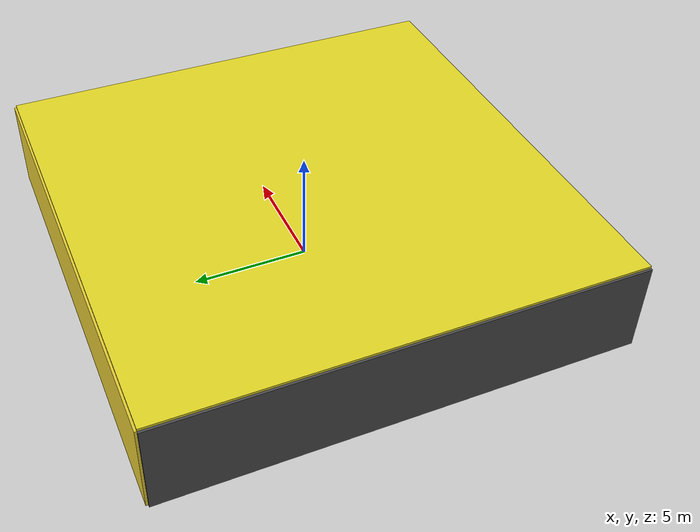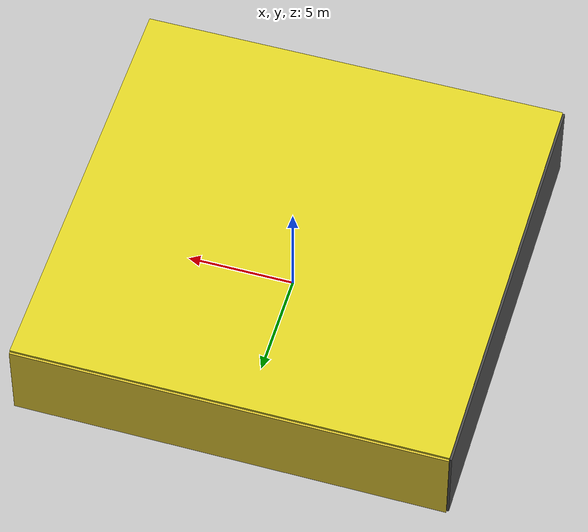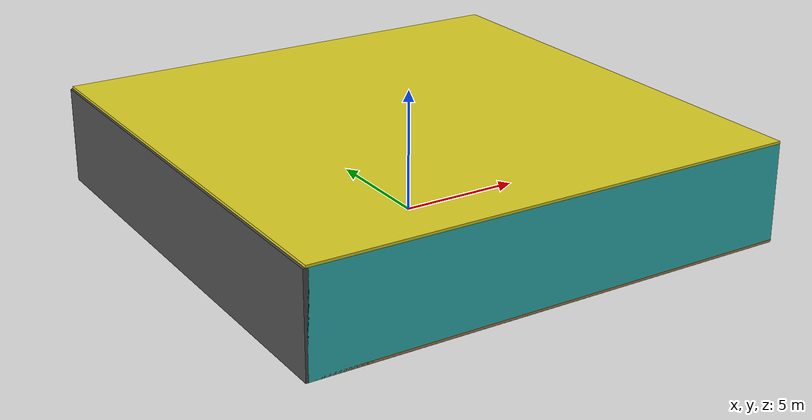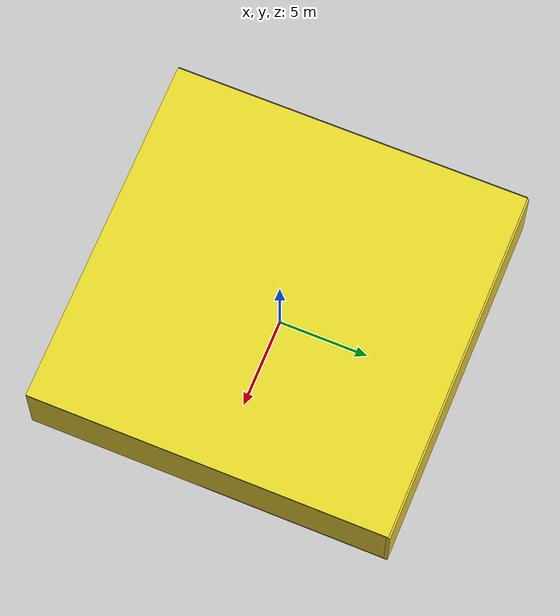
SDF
<sdf version="1.4">
 <world name="default">
  <physics type="ode">
   <max_step_size>0.001</max_step_size>
   <real_time_factor>1</real_time_factor>
   <real_time_update_rate>1000</real_time_update_rate>
   <gravity>0 0 -9.8</gravity>
  </physics>
  <scene><ambient>0.4 0.4 0.4 1</ambient><background>0.7 0.7 0.7 1</background><shadows>1</shadows></scene>
  <model name="Surrounding">
   <static>1</static>
   <link name="Ceiling">
    <collision name="Ceiling_Collision"><geometry><box><size>20 20 0.1</size></box></geometry></collision>
    <visual name="Ceiling_Visual">
     <geometry><box><size>20 20 0.1</size></box></geometry>
     <material>
      <script><uri>file://media/materials/scripts/gazebo.material</uri><name>Gazebo/Yellow</name></script>
     </material>
    </visual>
    <pose>0 0 4.05 0 0 0</pose>
   </link>
   <link name="Wall_South">
    <collision name="Wall_South_Collision">
     <geometry><box><size>20 0 4</size></box></geometry>
     <pose>0 0 2 0 -0 0</pose>
    </collision>
    <visual name="Wall_South_Visual">
     <pose>0 0 2 0 -0 0</pose>
     <geometry><box><size>20 0 4</size></box></geometry>
     <material>
      <script><uri>file://media/materials/scripts/gazebo.material</uri><name>Gazebo/Turquoise</name></script>
     </material>
    </visual>
    <velocity_decay><linear>0</linear><angular>0</angular></velocity_decay>
    <pose>0 -10 0 0 -0 0</pose>
   </link>
   <link name="Wall_East">
    <collision name="Wall_21_Collision">
     <geometry><box><size>20 0 4</size></box></geometry>
     <pose>0 0 2 0 -0 0</pose>
    </collision>
    <visual name="Wall_21_Visual">
     <pose>0 0 2 0 -0 0</pose>
     <geometry><box><size>20 0 4</size></box></geometry>
     <material>
      <script><uri>file://media/materials/scripts/gazebo.material</uri><name>Gazebo/ZincYellow</name></script>
     </material>
    </visual>
    <velocity_decay><linear>0</linear><angular>0</angular></velocity_decay>
    <pose>10 0 0 0 -0 1.5708</pose>
   </link>
   <link name="Wall_North">
    <collision name="Wall_22_Collision">
     <geometry><box><size>20 0.2 4</size></box></geometry>
     <pose>0 0 2 0 -0 0</pose>
    </collision>
    <visual name="Wall_22_Visual">
     <pose>0 0 2 0 -0 0</pose>
     <geometry><box><size>20 0.2 4</size></box></geometry>
     <material>
      <script><uri>file://media/materials/scripts/gazebo.material</uri><name>Gazebo/ZincYellow</name></script>
     </material>
    </visual>
    <velocity_decay><linear>0</linear><angular>0</angular></velocity_decay>
    <pose>0 10 0 0 -0 0</pose>
   </link>
   <link name="Wall_West">
    <collision name="Wall_23_Collision">
     <geometry><box><size>20 0.2 4</size></box></geometry>
     <pose>0 0 2 0 -0 0</pose>
    </collision>
    <visual name="Wall_23_Visual">
     <pose>0 0 2 0 -0 0</pose>
     <geometry><box><size>20 0.2 4</size></box></geometry>
     <material>
      <script><uri>file://media/materials/scripts/gazebo.material</uri><name>Gazebo/Road</name></script>
     </material>
    </visual>
    <velocity_decay><linear>0</linear><angular>0</angular></velocity_decay>
    <pose>-10 0 0 0 0 -1.5708</pose>
   </link>
   <link name="Ground_link">
    <collision name="collision">
     <pose>0 0 .05 0 -0 0</pose>
     <geometry><box><size>20 20 0.1</size></box></geometry>
    </collision>
    <visual name="visual">
     <pose>0 0 .05 0 -0 0</pose>
     <geometry><box><size>20 20 0.1</size></box></geometry>
     <material>
      <script><uri>file://media/materials/scripts/gazebo.material</uri><name>Gazebo/Wood</name></script>
     </material>
    </visual>
   </link>
   <static>1</static>
  </model>
  <spherical_coordinates>
   <surface_model>EARTH_WGS84</surface_model>
   <latitude_deg>0</latitude_deg>
   <longitude_deg>0</longitude_deg>
   <elevation>0</elevation>
   <heading_deg>0</heading_deg>
  </spherical_coordinates>
  <light name="lightball_0" type="diffuse">
   <diffuse>0.8 0.8 0.8 1</diffuse>
   <specular>0.2 0.2 0.2 1</specular>
   <attenuation>
    <range>100</range>
    <constant>0.7</constant>
    <linear>0.01</linear>
    <quadratic>0.001</quadratic>
   </attenuation>
   <direction>-0.5 0.1 -0.9</direction>
   <pose>3.40804404702 5.21973616305 2.12281445874 0 0 0</pose>
  </light>
  <light name="lightball_1" type="diffuse">
   <diffuse>0.8 0.8 0.8 1</diffuse>
   <specular>0.2 0.2 0.2 1</specular>
   <attenuation>
    <range>100</range>
    <constant>0.7</constant>
    <linear>0.01</linear>
    <quadratic>0.001</quadratic>
   </attenuation>
   <direction>-0.5 0.1 -0.9</direction>
   <pose>-2.99416624712 3.96158616661 3.64758307754 0 0 0</pose>
  </light>
  <light name="lightball_2" type="diffuse">
   <diffuse>0.8 0.8 0.8 1</diffuse>
   <specular>0.2 0.2 0.2 1</specular>
   <attenuation>
    <range>100</range>
    <constant>0.7</constant>
    <linear>0.01</linear>
    <quadratic>0.001</quadratic>
   </attenuation>
   <direction>-0.5 0.1 -0.9</direction>
   <pose>9.36749759892 -1.17246700027 1.63453146422 0 0 0</pose>
  </light>
  <light name="lightball_3" type="diffuse">
   <diffuse>0.8 0.8 0.8 1</diffuse>
   <specular>0.2 0.2 0.2 1</specular>
   <attenuation>
    <range>100</range>
    <constant>0.7</constant>
    <linear>0.01</linear>
    <quadratic>0.001</quadratic>
   </attenuation>
   <direction>-0.5 0.1 -0.9</direction>
   <pose>0.482527139271 -8.25620097717 2.82701597541 0 0 0</pose>
  </light>
  <light name="lightball_4" type="diffuse">
   <diffuse>0.8 0.8 0.8 1</diffuse>
   <specular>0.2 0.2 0.2 1</specular>
   <attenuation>
    <range>100</range>
    <constant>0.7</constant>
    <linear>0.01</linear>
    <quadratic>0.001</quadratic>
   </attenuation>
   <direction>-0.5 0.1 -0.9</direction>
   <pose>-4.51630960177 -0.131296089183 1.87561354107 0 0 0</pose>
  </light>
  <light name="lightball_5" type="diffuse">
   <diffuse>0.8 0.8 0.8 1</diffuse>
   <specular>0.2 0.2 0.2 1</specular>
   <attenuation>
    <range>100</range>
    <constant>0.7</constant>
    <linear>0.01</linear>
    <quadratic>0.001</quadratic>
   </attenuation>
   <direction>-0.5 0.1 -0.9</direction>
   <pose>-7.94053627582 -9.6143364803 1.89098058948 0 0 0</pose>
  </light>
  <light name="lightball_6" type="diffuse">
   <diffuse>0.8 0.8 0.8 1</diffuse>
   <specular>0.2 0.2 0.2 1</specular>
   <attenuation>
    <range>100</range>
    <constant>0.7</constant>
    <linear>0.01</linear>
    <quadratic>0.001</quadratic>
   </attenuation>
   <direction>-0.5 0.1 -0.9</direction>
   <pose>3.25390787332 -6.10675358567 3.16177724678 0 0 0</pose>
  </light>
  <light name="lightball_7" type="diffuse">
   <diffuse>0.8 0.8 0.8 1</diffuse>
   <specular>0.2 0.2 0.2 1</specular>
   <attenuation>
    <range>100</range>
    <constant>0.7</constant>
    <linear>0.01</linear>
    <quadratic>0.001</quadratic>
   </attenuation>
   <direction>-0.5 0.1 -0.9</direction>
   <pose>-3.43203588297 3.73483126425 0.79424899272 0 0 0</pose>
  </light>
  <light name="lightball_8" type="diffuse">
   <diffuse>0.8 0.8 0.8 1</diffuse>
   <specular>0.2 0.2 0.2 1</specular>
   <attenuation>
    <range>100</range>
    <constant>0.7</constant>
    <linear>0.01</linear>
    <quadratic>0.001</quadratic>
   </attenuation>
   <direction>-0.5 0.1 -0.9</direction>
   <pose>-4.39520835011 -9.5061526812 2.10999224429 0 0 0</pose>
  </light>
  <light name="lightball_9" type="diffuse">
   <diffuse>0.8 0.8 0.8 1</diffuse>
   <specular>0.2 0.2 0.2 1</specular>
   <attenuation>
    <range>100</range>
    <constant>0.7</constant>
    <linear>0.01</linear>
    <quadratic>0.001</quadratic>
   </attenuation>
   <direction>-0.5 0.1 -0.9</direction>
   <pose>-7.8081143739 -8.26523096727 3.36141275259 0 0 0</pose>
  </light>
  <light name="lightball_10" type="diffuse">
   <diffuse>0.8 0.8 0.8 1</diffuse>
   <specular>0.2 0.2 0.2 1</specular>
   <attenuation>
    <range>100</range>
    <constant>0.7</constant>
    <linear>0.01</linear>
    <quadratic>0.001</quadratic>
   </attenuation>
   <direction>-0.5 0.1 -0.9</direction>
   <pose>-9.23025267305 2.5993031494 1.99457644908 0 0 0</pose>
  </light>
  <light name="lightball_11" type="diffuse">
   <diffuse>0.8 0.8 0.8 1</diffuse>
   <specular>0.2 0.2 0.2 1</specular>
   <attenuation>
    <range>100</range>
    <constant>0.7</constant>
    <linear>0.01</linear>
    <quadratic>0.001</quadratic>
   </attenuation>
   <direction>-0.5 0.1 -0.9</direction>
   <pose>-6.77872786195 3.24087229825 2.74147152513 0 0 0</pose>
  </light>
  <include><uri>model://cabinet</uri><pose>-7.23439924453 -6.93266950828 0 0 0 2.04667798329</pose></include>
  <include><uri>model://cabinet</uri><pose>-5.02605295511 8.22864305848 0 0 0 1.02730343612</pose></include>
  <include>
   <uri>model://textured_shapes</uri>
   <pose>-2.24563150373 5.13976647493 0 0 0 2.80895121476</pose>
  </include>
  <include>
   <uri>model://robocup_3Dsim_goal</uri>
   <pose>-0.757356554698 7.4913783541 0 0 0 2.35876246993</pose>
  </include>
  <include><uri>model://cabinet</uri><pose>5.10113563312 5.07830098634 0 0 0 1.26829148435</pose></include>
  <include>
   <uri>model://construction_cone</uri>
   <pose>7.3936549034 -7.04000100609 0 0 0 2.98302677742</pose>
  </include>
 </world>
</sdf>

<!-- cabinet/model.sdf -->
<sdf version="1.5">
  <model name="cabinet">
    <static>true</static>
    <link name="cabinet_bottom_plate">
      <inertial>
        <pose>0 0 -1 0 0 0</pose>
        <inertia>
          <ixx>2.050000</ixx>
          <ixy>0</ixy>
          <ixz>0</ixz>
          <iyy>2.050000</iyy>
          <iyz>0</iyz>
          <izz>2.050000</izz>
        </inertia>
        <mass>25.000000</mass>
      </inertial>
      <collision name="cabinet_bottom_plate_geom">
        <pose>0 0 0.010000 0 0 0</pose>
        <geometry>
          <box>
            <size>0.450000 0.450000 0.020000</size>
          </box>
        </geometry>
      </collision>
      <visual name="cabinet_bottom_plate_geom_visual">
        <pose>0 0 0.010000 0 0 0</pose>
        <geometry>
          <box>
            <size>0.450000 0.450000 0.020000</size>
          </box>
        </geometry>
        <material>
          <script>
            <uri>model://media/materials/scripts/gazebo.material</uri>
            <name>Gazebo/Wood</name>
          </script>
        </material>
      </visual>
      <collision name="cabinet_bottom_plate_geom_cabinet_back_plate">
        <pose>0.235000 0 0.510000 0 0 0</pose>
        <geometry>
          <box>
            <size>0.020000 0.450000 1.020000</size>
          </box>
        </geometry>
      </collision>
      <visual name="cabinet_bottom_plate_geom_cabinet_back_plate_visual">
        <pose>0.235000 0 0.510000 0 0 0</pose>
        <geometry>
          <box>
            <size>0.020000 0.450000 1.020000</size>
          </box>
        </geometry>
        <material>
          <script>
            <uri>model://media/materials/scripts/gazebo.material</uri>
            <name>Gazebo/Wood</name>
          </script>
        </material>
      </visual>
      <collision name="cabinet_bottom_plate_geom_cabinet_left_plate">
        <pose>0 0.235000 0.510000 0 0 0</pose>
        <geometry>
          <box>
            <size>0.450000 0.020000 1.020000</size>
          </box>
        </geometry>
      </collision>
      <visual name="cabinet_bottom_plate_geom_cabinet_left_plate_visual">
        <pose>0 0.235000 0.510000 0 0 0</pose>
        <geometry>
          <box>
            <size>0.450000 0.020000 1.020000</size>
          </box>
        </geometry>
        <material>
          <script>
            <uri>model://media/materials/scripts/gazebo.material</uri>
            <name>Gazebo/Wood</name>
          </script>
        </material>
      </visual>
      <collision name="cabinet_bottom_plate_geom_cabinet_middle_plate">
        <pose>0 0 0.510000 0 0 0</pose>
        <geometry>
          <box>
            <size>0.450000 0.450000 0.020000</size>
          </box>
        </geometry>
      </collision>
      <visual name="cabinet_bottom_plate_geom_cabinet_middle_plate_visual">
        <pose>0 0 0.510000 0 0 0</pose>
        <geometry>
          <box>
            <size>0.450000 0.450000 0.020000</size>
          </box>
        </geometry>
        <material>
          <script>
            <uri>model://media/materials/scripts/gazebo.material</uri>
            <name>Gazebo/Wood</name>
          </script>
        </material>
      </visual>
      <collision name="cabinet_bottom_plate_geom_cabinet_right_plate">
        <pose>0 -0.235000 0.510000 0 0 0</pose>
        <geometry>
          <box>
            <size>0.450000 0.020000 1.020000</size>
          </box>
        </geometry>
      </collision>
      <visual name="cabinet_bottom_plate_geom_cabinet_right_plate_visual">
        <pose>0 -0.235000 0.510000 0 0 0</pose>
        <geometry>
          <box>
            <size>0.450000 0.020000 1.020000</size>
          </box>
        </geometry>
        <material>
          <script>
            <uri>model://media/materials/scripts/gazebo.material</uri>
            <name>Gazebo/Wood</name>
          </script>
        </material>
      </visual>
      <collision name="cabinet_bottom_plate_geom_cabinet_top_plate">
        <pose>0 0 1.010000 0 0 0</pose>
        <geometry>
          <box>
            <size>0.450000 0.450000 0.020000</size>
          </box>
        </geometry>
      </collision>
      <visual name="cabinet_bottom_plate_geom_cabinet_top_plate_visual">
        <pose>0 0 1.010000 0 0 0</pose>
        <geometry>
          <box>
            <size>0.450000 0.450000 0.020000</size>
          </box>
        </geometry>
        <material>
          <script>
            <uri>model://media/materials/scripts/gazebo.material</uri>
            <name>Gazebo/Wood</name>
          </script>
        </material>
      </visual>
    </link>
  </model>
</sdf>

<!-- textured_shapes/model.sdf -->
<sdf version="1.6">
  <model name="textured_shapes">
    <pose>0 0 0.5 0 0 0</pose>
    <link name="box">
      <pose>0 -1.5 0 0 0 0</pose>
      <collision name="collision">
        <geometry>
          <box>
            <size>1 1 1</size>
          </box>
        </geometry>
      </collision>
      <visual name="visual">
        <geometry>
          <box>
            <size>1 1 1</size>
          </box>
        </geometry>
        <material>
          <script>
            <uri>model://../model_source/models/textured_shapes/materials/scripts</uri>
            <uri>model://../model_source/models/textured_shapes/materials/textures</uri>
            <name>TexturedShape/Squares</name>
          </script>
        </material>
      </visual>
    </link>
    <link name="sphere">
      <collision name="collision">
        <geometry>
          <sphere>
            <radius>0.5</radius>
          </sphere>
        </geometry>
      </collision>
      <visual name="visual">
        <geometry>
          <sphere>
            <radius>0.5</radius>
          </sphere>
        </geometry>
        <material>
          <script>
            <uri>model://../model_source/models/textured_shapes/materials/scripts</uri>
            <uri>model://../model_source/models/textured_shapes/materials/textures</uri>
            <name>TexturedShape/Squares</name>
          </script>
        </material>
      </visual>
    </link>
    <link name="cylinder">
      <pose>0 1.5 0 0 0 0</pose>
      <collision name="collision">
        <geometry>
          <cylinder>
            <radius>0.5</radius>
            <length>1</length>
          </cylinder>
        </geometry>
      </collision>
      <visual name="visual">
        <geometry>
          <cylinder>
            <radius>0.5</radius>
            <length>1</length>
          </cylinder>
        </geometry>
        <material>
          <script>
            <uri>model://../model_source/models/textured_shapes/materials/scripts</uri>
            <uri>model://../model_source/models/textured_shapes/materials/textures</uri>
            <name>TexturedShape/Squares</name>
          </script>
        </material>
      </visual>
    </link>
  </model>
</sdf>

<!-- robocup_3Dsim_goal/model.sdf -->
<sdf version="1.5">
  <model name="robocup_3d_goal">
    <static>true</static>
    <link name="left_post">
      <pose>0 1.05 0.45 0 0 0</pose>
      <collision name="collision">
        <geometry>
          <cylinder>
            <radius>0.05</radius>
            <length>0.9</length>
          </cylinder>
        </geometry>
      </collision>
      <visual name="visual">
        <geometry>
          <cylinder>
            <radius>0.05</radius>
            <length>0.9</length>
          </cylinder>
        </geometry>
        <material>
          <script>
            <uri>file://media/materials/scripts/gazebo.material</uri>
            <name>Gazebo/ZincYellow</name>
          </script>
        </material>
      </visual>
    </link>
    <link name="left_support_horiz_lower">
      <pose>0.30 1.05 0.01 0 0 0</pose>
      <collision name="collision">
        <geometry>
          <box>
            <size>0.50 0.02 0.02</size>
          </box>
        </geometry>
      </collision>
      <visual name="visual">
        <geometry>
          <box>
            <size>0.50 0.02 0.02</size>
          </box>
        </geometry>
        <material>
          <script>
            <uri>file://media/materials/scripts/gazebo.material</uri>
            <name>Gazebo/White</name>
          </script>
        </material>
      </visual>
    </link>
    <link name="left_support_horiz_upper">
      <pose>0.30 1.05 0.79 0 0 0</pose>
      <collision name="collision">
        <geometry>
          <box>
            <size>0.50 0.02 0.02</size>
          </box>
        </geometry>
      </collision>
      <visual name="visual">
        <geometry>
          <box>
            <size>0.50 0.02 0.02</size>
          </box>
        </geometry>
        <material>
          <script>
            <uri>file://media/materials/scripts/gazebo.material</uri>
            <name>Gazebo/White</name>
          </script>
        </material>
      </visual>
    </link>
    <link name="left_support_vertical">
      <pose>0.56 1.05 0.4 0 1.5708 0</pose>
      <collision name="collision">
        <geometry>
          <box>
            <size>0.80 0.02 0.02</size>
          </box>
        </geometry>
      </collision>
      <visual name="visual">
        <geometry>
          <box>
            <size>0.80 0.02 0.02</size>
          </box>
        </geometry>
        <material>
          <script>
            <uri>file://media/materials/scripts/gazebo.material</uri>
            <name>Gazebo/White</name>
          </script>
        </material>
      </visual>
    </link>
    <link name="right_support_horiz_lower">
      <pose>0.30 -1.05 0.01 0 0 0</pose>
      <collision name="collision">
        <geometry>
          <box>
            <size>0.50 0.02 0.02</size>
          </box>
        </geometry>
      </collision>
      <visual name="visual">
        <geometry>
          <box>
            <size>0.50 0.02 0.02</size>
          </box>
        </geometry>
        <material>
          <script>
            <uri>file://media/materials/scripts/gazebo.material</uri>
            <name>Gazebo/White</name>
          </script>
        </material>
      </visual>
    </link>
    <link name="right_support_horiz_upper">
      <pose>0.30 -1.05 0.79 0 0 0</pose>
      <collision name="collision">
        <geometry>
          <box>
            <size>0.50 0.02 0.02</size>
          </box>
        </geometry>
      </collision>
      <visual name="visual">
        <geometry>
          <box>
            <size>0.50 0.02 0.02</size>
          </box>
        </geometry>
        <material>
          <script>
            <uri>file://media/materials/scripts/gazebo.material</uri>
            <name>Gazebo/White</name>
          </script>
        </material>
      </visual>
    </link>
    <link name="right_support_vertical">
      <pose>0.56 -1.05 0.4 0 1.5708 0</pose>
      <collision name="collision">
        <geometry>
          <box>
            <size>0.80 0.02 0.02</size>
          </box>
        </geometry>
      </collision>
      <visual name="visual">
        <geometry>
          <box>
            <size>0.80 0.02 0.02</size>
          </box>
        </geometry>
        <material>
          <script>
            <uri>file://media/materials/scripts/gazebo.material</uri>
            <name>Gazebo/White</name>
          </script>
        </material>
      </visual>
    </link>
    <link name="center_support_horiz_lower">
      <pose>0.56 0 0.01 0 1.5708 0</pose>
      <collision name="collision">
        <geometry>
          <box>
            <size>0.02 2.08 0.02</size>
          </box>
        </geometry>
      </collision>
      <visual name="visual">
        <geometry>
          <box>
            <size>0.02 2.08 0.02</size>
          </box>
        </geometry>
        <material>
          <script>
            <uri>file://media/materials/scripts/gazebo.material</uri>
            <name>Gazebo/White</name>
          </script>
        </material>
      </visual>
    </link>
    <link name="center_support_horiz_upper">
      <pose>0.56 0 0.79 0 1.5708 0</pose>
      <collision name="collision">
        <geometry>
          <box>
            <size>0.02 2.08 0.02</size>
          </box>
        </geometry>
      </collision>
      <visual name="visual">
        <geometry>
          <box>
            <size>0.02 2.08 0.02</size>
          </box>
        </geometry>
        <material>
          <script>
            <uri>file://media/materials/scripts/gazebo.material</uri>
            <name>Gazebo/White</name>
          </script>
        </material>
      </visual>
    </link>
    <link name="right_post">
      <pose>0 -1.05 0.45 0 0 0</pose>
      <collision name="collision">
        <geometry>
          <cylinder>
            <radius>0.05</radius>
            <length>0.9</length>
          </cylinder>
        </geometry>
      </collision>
      <visual name="visual">
        <geometry>
          <cylinder>
            <radius>0.05</radius>
            <length>0.9</length>
          </cylinder>
        </geometry>
        <material>
          <script>
            <uri>file://media/materials/scripts/gazebo.material</uri>
            <name>Gazebo/ZincYellow</name>
          </script>
        </material>
      </visual>
    </link>
    <link name="crossbar">
      <pose>0 0 0.85 1.57 1.57 0</pose>
      <collision name="collision">
        <geometry>
          <cylinder>
            <radius>0.05</radius>
            <length>2.0</length>
          </cylinder>
        </geometry>
      </collision>
      <visual name="visual">
        <geometry>
          <cylinder>
            <radius>0.05</radius>
            <length>2.0</length>
          </cylinder>
        </geometry>
        <material>
          <script>
            <uri>file://media/materials/scripts/gazebo.material</uri>
            <name>Gazebo/ZincYellow</name>
          </script>
        </material>
      </visual>
    </link>
    <link name="center_net">
      <pose>0.56 0 0.40 0 0 0</pose>
      <collision name="collision">
        <geometry>
          <box>
            <size>0.01 2.1 0.80</size>
          </box>
        </geometry>
      </collision>
      <visual name="visual">
        <geometry>
          <box>
            <size>0.01 2.1 0.80</size>
          </box>
        </geometry>
        <material>
          <script>
            <uri>model://../model_source/models/robocup09_spl_field/materials/scripts/</uri>
            <uri>model://../model_source/models/robocup09_spl_field/materials/textures/</uri>
            <name>RoboCup/Net</name>
          </script>
        </material>
      </visual>
    </link>
    <link name="left_net">
      <pose>0.30 1.05 0.40 0 0 0</pose>
      <collision name="collision">
        <geometry>
          <box>
            <size>0.50 0.01 0.76</size>
          </box>
        </geometry>
      </collision>
      <visual name="visual">
        <geometry>
          <box>
            <size>0.50 0.01 0.76</size>
          </box>
        </geometry>
        <material>
          <script>
            <uri>model://../model_source/models/robocup09_spl_field/materials/scripts/</uri>
            <uri>model://../model_source/models/robocup09_spl_field/materials/textures/</uri>
            <name>RoboCup/Net</name>
          </script>
        </material>
      </visual>
    </link>
    <link name="right_net">
      <pose>0.30 -1.05 0.40 0 0 0</pose>
      <collision name="collision">
        <geometry>
          <box>
            <size>0.50 0.01 0.76</size>
          </box>
        </geometry>
      </collision>
      <visual name="visual">
        <geometry>
          <box>
            <size>0.50 0.01 0.76</size>
          </box>
        </geometry>
        <material>
          <script>
            <uri>model://../model_source/models/robocup09_spl_field/materials/scripts/</uri>
            <uri>model://../model_source/models/robocup09_spl_field/materials/textures/</uri>
            <name>RoboCup/Net</name>
          </script>
        </material>
      </visual>
    </link>
  </model>
</sdf>

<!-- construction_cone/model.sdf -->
<sdf version="1.5">
  <model name="Construction Cone">
    <link name="link">
      <collision name="collision">
        <geometry>
          <mesh>
            <scale>10 10 10</scale>
            <uri>file://isr-testbed/construction_cone/meshes/construction_cone.dae</uri>
          </mesh>
        </geometry>
      </collision>
      <visual name="visual">
        <geometry>
          <mesh>
            <scale>10 10 10</scale>
            <uri>file://isr-testbed/construction_cone/meshes/construction_cone.dae</uri>
          </mesh>
        </geometry>
      </visual>
    </link>
  </model>
</sdf>
